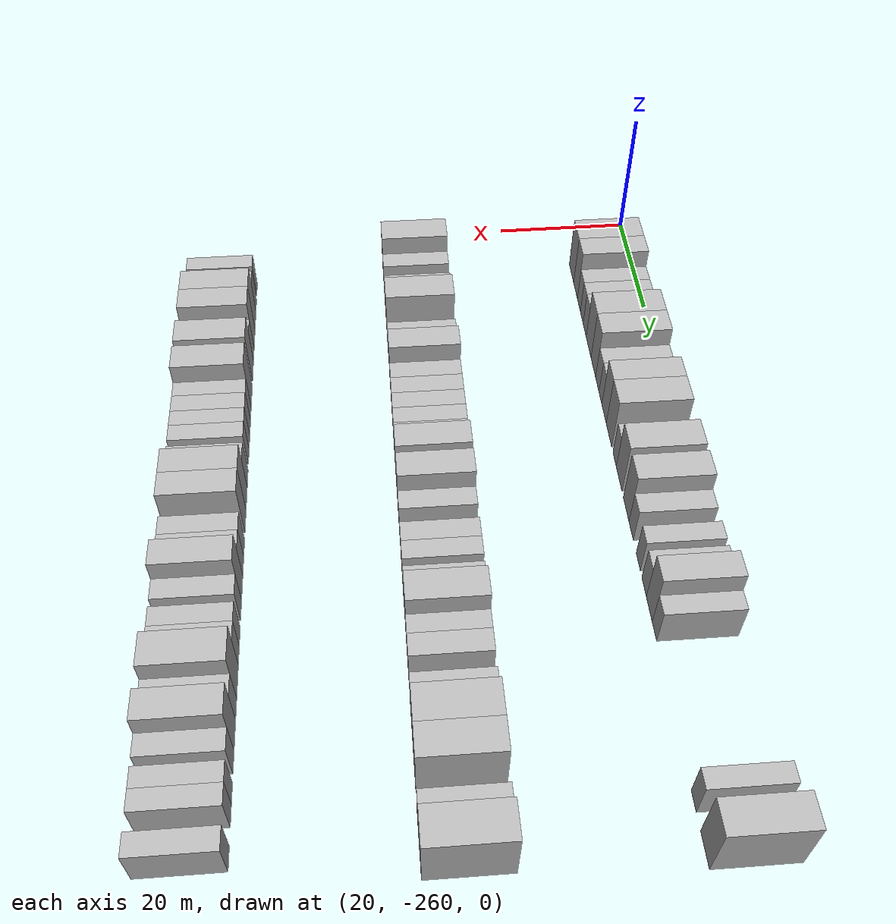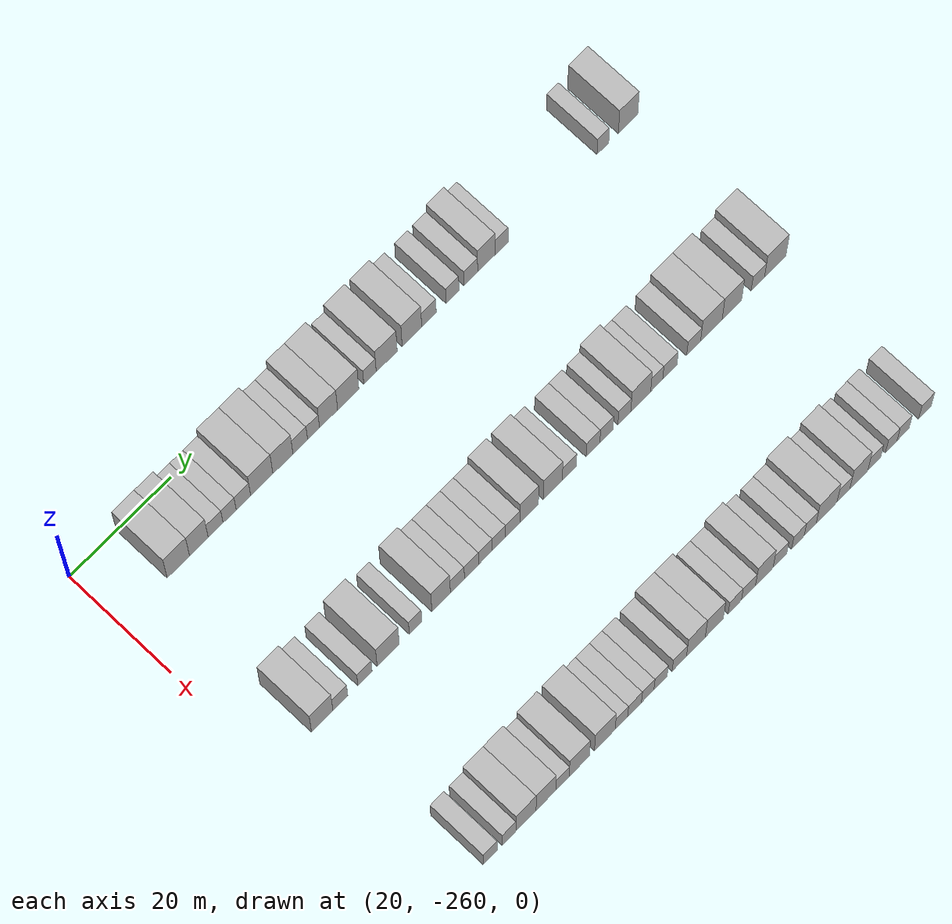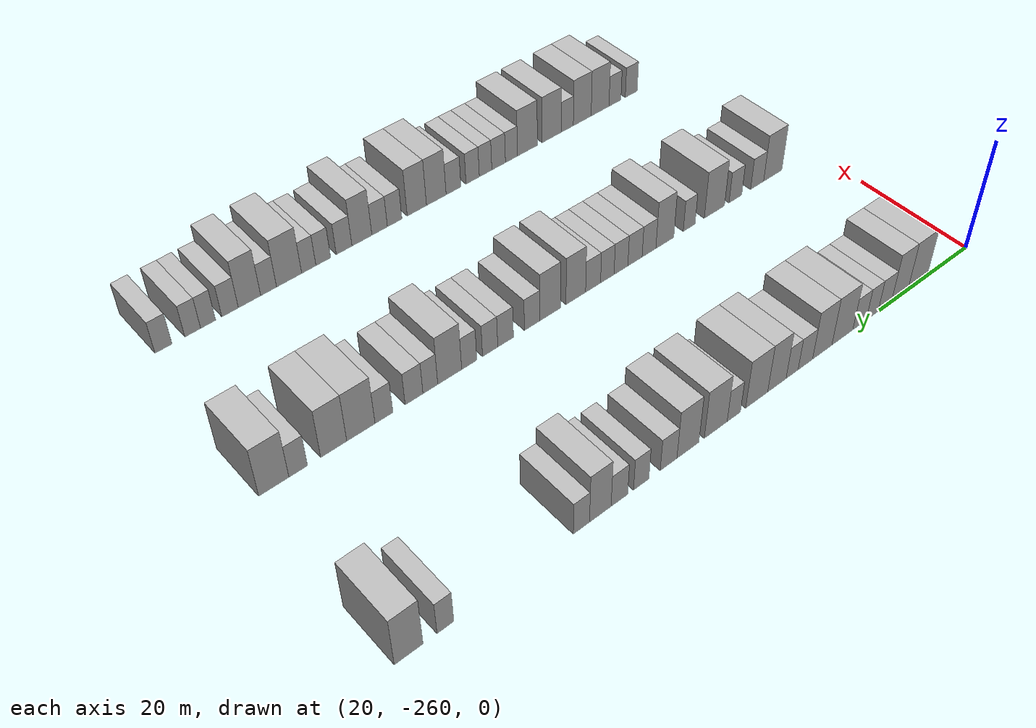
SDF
<sdf version="1.6">
 <world name="default">
  <model name="building_48">
   <static>1</static>
   <pose>25.0000 -248.5804 0 0.000000 0.000000 0.000000</pose>
   <link name="link">
    <pose>0 0 4.50 0 0 0</pose>
    <collision name="collision"><geometry><box><size>10.0000 4.4221 9.0000</size></box></geometry></collision>
    <visual name="visual">
     <cast_shadows>0</cast_shadows>
     <geometry><box><size>10.0000 4.4221 9.0000</size></box></geometry>
     <material>
      <script>
       <uri>model://HANNAS_wall/materials/scripts</uri>
       <uri>model://HANNAS_wall/materials/textures</uri>
       <name>vrc/HANNAS_wall</name>
      </script>
     </material>
    </visual>
   </link>
  </model>
  <model name="building_49">
   <static>1</static>
   <pose>25.0000 -244.5217 0 0.000000 0.000000 0.000000</pose>
   <link name="link">
    <pose>0 0 4.50 0 0 0</pose>
    <collision name="collision"><geometry><box><size>10.0000 3.6953 9.0000</size></box></geometry></collision>
    <visual name="visual">
     <cast_shadows>0</cast_shadows>
     <geometry><box><size>10.0000 3.6953 9.0000</size></box></geometry>
     <material>
      <script>
       <uri>model://HANNAS_wall/materials/scripts</uri>
       <uri>model://HANNAS_wall/materials/textures</uri>
       <name>vrc/HANNAS_wall</name>
      </script>
     </material>
    </visual>
   </link>
  </model>
  <model name="building_50">
   <static>1</static>
   <pose>25.0000 -241.1943 0 0.000000 0.000000 0.000000</pose>
   <link name="link">
    <pose>0 0 3.00 0 0 0</pose>
    <collision name="collision"><geometry><box><size>10.0000 2.9596 6.0000</size></box></geometry></collision>
    <visual name="visual">
     <cast_shadows>0</cast_shadows>
     <geometry><box><size>10.0000 2.9596 6.0000</size></box></geometry>
     <material>
      <script>
       <uri>model://HANNAS_wall/materials/scripts</uri>
       <uri>model://HANNAS_wall/materials/textures</uri>
       <name>vrc/HANNAS_wall</name>
      </script>
     </material>
    </visual>
   </link>
  </model>
  <model name="building_51">
   <static>1</static>
   <pose>25.0000 -238.4130 0 0.000000 0.000000 0.000000</pose>
   <link name="link">
    <pose>0 0 3.00 0 0 0</pose>
    <collision name="collision"><geometry><box><size>10.0000 2.6029 6.0000</size></box></geometry></collision>
    <visual name="visual">
     <cast_shadows>0</cast_shadows>
     <geometry><box><size>10.0000 2.6029 6.0000</size></box></geometry>
     <material>
      <script>
       <uri>model://HANNAS_wall/materials/scripts</uri>
       <uri>model://HANNAS_wall/materials/textures</uri>
       <name>vrc/HANNAS_wall</name>
      </script>
     </material>
    </visual>
   </link>
  </model>
  <model name="building_52">
   <static>1</static>
   <pose>25.0000 -235.6699 0 0.000000 0.000000 0.000000</pose>
   <link name="link">
    <pose>0 0 3.00 0 0 0</pose>
    <collision name="collision"><geometry><box><size>10.0000 2.8835 6.0000</size></box></geometry></collision>
    <visual name="visual">
     <cast_shadows>0</cast_shadows>
     <geometry><box><size>10.0000 2.8835 6.0000</size></box></geometry>
     <material>
      <script>
       <uri>model://HANNAS_wall/materials/scripts</uri>
       <uri>model://HANNAS_wall/materials/textures</uri>
       <name>vrc/HANNAS_wall</name>
      </script>
     </material>
    </visual>
   </link>
  </model>
  <model name="building_53">
   <static>1</static>
   <pose>25.0000 -232.0106 0 0.000000 0.000000 0.000000</pose>
   <link name="link">
    <pose>0 0 4.50 0 0 0</pose>
    <collision name="collision"><geometry><box><size>10.0000 4.4352 9.0000</size></box></geometry></collision>
    <visual name="visual">
     <cast_shadows>0</cast_shadows>
     <geometry><box><size>10.0000 4.4352 9.0000</size></box></geometry>
     <material>
      <script>
       <uri>model://HANNAS_wall/materials/scripts</uri>
       <uri>model://HANNAS_wall/materials/textures</uri>
       <name>vrc/HANNAS_wall</name>
      </script>
     </material>
    </visual>
   </link>
  </model>
  <model name="building_54">
   <static>1</static>
   <pose>25.0000 -227.7891 0 0.000000 0.000000 0.000000</pose>
   <link name="link">
    <pose>0 0 4.50 0 0 0</pose>
    <collision name="collision"><geometry><box><size>10.0000 4.0078 9.0000</size></box></geometry></collision>
    <visual name="visual">
     <cast_shadows>0</cast_shadows>
     <geometry><box><size>10.0000 4.0078 9.0000</size></box></geometry>
     <material>
      <script>
       <uri>model://HANNAS_wall/materials/scripts</uri>
       <uri>model://HANNAS_wall/materials/textures</uri>
       <name>vrc/HANNAS_wall</name>
      </script>
     </material>
    </visual>
   </link>
  </model>
  <model name="building_55">
   <static>1</static>
   <pose>25.0000 -224.3146 0 0.000000 0.000000 0.000000</pose>
   <link name="link">
    <pose>0 0 3.00 0 0 0</pose>
    <collision name="collision"><geometry><box><size>10.0000 2.9411 6.0000</size></box></geometry></collision>
    <visual name="visual">
     <cast_shadows>0</cast_shadows>
     <geometry><box><size>10.0000 2.9411 6.0000</size></box></geometry>
     <material>
      <script>
       <uri>model://HANNAS_wall/materials/scripts</uri>
       <uri>model://HANNAS_wall/materials/textures</uri>
       <name>vrc/HANNAS_wall</name>
      </script>
     </material>
    </visual>
   </link>
  </model>
  <model name="building_56">
   <static>1</static>
   <pose>25.0000 -221.6386 0 0.000000 0.000000 0.000000</pose>
   <link name="link">
    <pose>0 0 3.00 0 0 0</pose>
    <collision name="collision"><geometry><box><size>10.0000 2.4108 6.0000</size></box></geometry></collision>
    <visual name="visual">
     <cast_shadows>0</cast_shadows>
     <geometry><box><size>10.0000 2.4108 6.0000</size></box></geometry>
     <material>
      <script>
       <uri>model://HANNAS_wall/materials/scripts</uri>
       <uri>model://HANNAS_wall/materials/textures</uri>
       <name>vrc/HANNAS_wall</name>
      </script>
     </material>
    </visual>
   </link>
  </model>
  <model name="building_57">
   <static>1</static>
   <pose>25.0000 -218.6162 0 0.000000 0.000000 0.000000</pose>
   <link name="link">
    <pose>0 0 4.50 0 0 0</pose>
    <collision name="collision"><geometry><box><size>10.0000 3.6340 9.0000</size></box></geometry></collision>
    <visual name="visual">
     <cast_shadows>0</cast_shadows>
     <geometry><box><size>10.0000 3.6340 9.0000</size></box></geometry>
     <material>
      <script>
       <uri>model://HANNAS_wall/materials/scripts</uri>
       <uri>model://HANNAS_wall/materials/textures</uri>
       <name>vrc/HANNAS_wall</name>
      </script>
     </material>
    </visual>
   </link>
  </model>
  <model name="building_58">
   <static>1</static>
   <pose>25.0000 -214.6538 0 0.000000 0.000000 0.000000</pose>
   <link name="link">
    <pose>0 0 4.50 0 0 0</pose>
    <collision name="collision"><geometry><box><size>10.0000 4.2908 9.0000</size></box></geometry></collision>
    <visual name="visual">
     <cast_shadows>0</cast_shadows>
     <geometry><box><size>10.0000 4.2908 9.0000</size></box></geometry>
     <material>
      <script>
       <uri>model://HANNAS_wall/materials/scripts</uri>
       <uri>model://HANNAS_wall/materials/textures</uri>
       <name>vrc/HANNAS_wall</name>
      </script>
     </material>
    </visual>
   </link>
  </model>
  <model name="building_59">
   <static>1</static>
   <pose>25.0000 -210.2531 0 0.000000 0.000000 0.000000</pose>
   <link name="link">
    <pose>0 0 3.00 0 0 0</pose>
    <collision name="collision"><geometry><box><size>10.0000 2.5106 6.0000</size></box></geometry></collision>
    <visual name="visual">
     <cast_shadows>0</cast_shadows>
     <geometry><box><size>10.0000 2.5106 6.0000</size></box></geometry>
     <material>
      <script>
       <uri>model://HANNAS_wall/materials/scripts</uri>
       <uri>model://HANNAS_wall/materials/textures</uri>
       <name>vrc/HANNAS_wall</name>
      </script>
     </material>
    </visual>
   </link>
  </model>
  <model name="building_60">
   <static>1</static>
   <pose>25.0000 -206.8731 0 0.000000 0.000000 0.000000</pose>
   <link name="link">
    <pose>0 0 4.50 0 0 0</pose>
    <collision name="collision"><geometry><box><size>10.0000 4.2494 9.0000</size></box></geometry></collision>
    <visual name="visual">
     <cast_shadows>0</cast_shadows>
     <geometry><box><size>10.0000 4.2494 9.0000</size></box></geometry>
     <material>
      <script>
       <uri>model://HANNAS_wall/materials/scripts</uri>
       <uri>model://HANNAS_wall/materials/textures</uri>
       <name>vrc/HANNAS_wall</name>
      </script>
     </material>
    </visual>
   </link>
  </model>
  <model name="building_61">
   <static>1</static>
   <pose>25.0000 -201.7573 0 0.000000 0.000000 0.000000</pose>
   <link name="link">
    <pose>0 0 4.50 0 0 0</pose>
    <collision name="collision"><geometry><box><size>10.0000 3.9822 9.0000</size></box></geometry></collision>
    <visual name="visual">
     <cast_shadows>0</cast_shadows>
     <geometry><box><size>10.0000 3.9822 9.0000</size></box></geometry>
     <material>
      <script>
       <uri>model://HANNAS_wall/materials/scripts</uri>
       <uri>model://HANNAS_wall/materials/textures</uri>
       <name>vrc/HANNAS_wall</name>
      </script>
     </material>
    </visual>
   </link>
  </model>
  <model name="building_62">
   <static>1</static>
   <pose>25.0000 -198.2822 0 0.000000 0.000000 0.000000</pose>
   <link name="link">
    <pose>0 0 3.00 0 0 0</pose>
    <collision name="collision"><geometry><box><size>10.0000 2.9679 6.0000</size></box></geometry></collision>
    <visual name="visual">
     <cast_shadows>0</cast_shadows>
     <geometry><box><size>10.0000 2.9679 6.0000</size></box></geometry>
     <material>
      <script>
       <uri>model://HANNAS_wall/materials/scripts</uri>
       <uri>model://HANNAS_wall/materials/textures</uri>
       <name>vrc/HANNAS_wall</name>
      </script>
     </material>
    </visual>
   </link>
  </model>
  <model name="building_63">
   <static>1</static>
   <pose>25.0000 -193.4689 0 0.000000 0.000000 0.000000</pose>
   <link name="link">
    <pose>0 0 3.00 0 0 0</pose>
    <collision name="collision"><geometry><box><size>10.0000 2.6585 6.0000</size></box></geometry></collision>
    <visual name="visual">
     <cast_shadows>0</cast_shadows>
     <geometry><box><size>10.0000 2.6585 6.0000</size></box></geometry>
     <material>
      <script>
       <uri>model://HANNAS_wall/materials/scripts</uri>
       <uri>model://HANNAS_wall/materials/textures</uri>
       <name>vrc/HANNAS_wall</name>
      </script>
     </material>
    </visual>
   </link>
  </model>
  <model name="building_64">
   <static>1</static>
   <pose>25.0000 -189.7304 0 0.000000 0.000000 0.000000</pose>
   <link name="link">
    <pose>0 0 3.00 0 0 0</pose>
    <collision name="collision"><geometry><box><size>10.0000 2.8185 6.0000</size></box></geometry></collision>
    <visual name="visual">
     <cast_shadows>0</cast_shadows>
     <geometry><box><size>10.0000 2.8185 6.0000</size></box></geometry>
     <material>
      <script>
       <uri>model://HANNAS_wall/materials/scripts</uri>
       <uri>model://HANNAS_wall/materials/textures</uri>
       <name>vrc/HANNAS_wall</name>
      </script>
     </material>
    </visual>
   </link>
  </model>
  <model name="building_65">
   <static>1</static>
   <pose>25.0000 -186.5203 0 0.000000 0.000000 0.000000</pose>
   <link name="link">
    <pose>0 0 4.50 0 0 0</pose>
    <collision name="collision"><geometry><box><size>10.0000 3.6018 9.0000</size></box></geometry></collision>
    <visual name="visual">
     <cast_shadows>0</cast_shadows>
     <geometry><box><size>10.0000 3.6018 9.0000</size></box></geometry>
     <material>
      <script>
       <uri>model://HANNAS_wall/materials/scripts</uri>
       <uri>model://HANNAS_wall/materials/textures</uri>
       <name>vrc/HANNAS_wall</name>
      </script>
     </material>
    </visual>
   </link>
  </model>
  <model name="building_66">
   <static>1</static>
   <pose>25.0000 -183.3925 0 0.000000 0.000000 0.000000</pose>
   <link name="link">
    <pose>0 0 3.00 0 0 0</pose>
    <collision name="collision"><geometry><box><size>10.0000 2.6539 6.0000</size></box></geometry></collision>
    <visual name="visual">
     <cast_shadows>0</cast_shadows>
     <geometry><box><size>10.0000 2.6539 6.0000</size></box></geometry>
     <material>
      <script>
       <uri>model://HANNAS_wall/materials/scripts</uri>
       <uri>model://HANNAS_wall/materials/textures</uri>
       <name>vrc/HANNAS_wall</name>
      </script>
     </material>
    </visual>
   </link>
  </model>
  <model name="building_67">
   <static>1</static>
   <pose>25.0000 -162.3993 0 0.000000 0.000000 0.000000</pose>
   <link name="link">
    <pose>0 0 3.00 0 0 0</pose>
    <collision name="collision"><geometry><box><size>10.0000 2.4442 6.0000</size></box></geometry></collision>
    <visual name="visual">
     <cast_shadows>0</cast_shadows>
     <geometry><box><size>10.0000 2.4442 6.0000</size></box></geometry>
     <material>
      <script>
       <uri>model://HANNAS_wall/materials/scripts</uri>
       <uri>model://HANNAS_wall/materials/textures</uri>
       <name>vrc/HANNAS_wall</name>
      </script>
     </material>
    </visual>
   </link>
  </model>
  <model name="building_68">
   <static>1</static>
   <pose>25.0000 -157.1487 0 0.000000 0.000000 0.000000</pose>
   <link name="link">
    <pose>0 0 4.50 0 0 0</pose>
    <collision name="collision"><geometry><box><size>10.0000 4.0571 9.0000</size></box></geometry></collision>
    <visual name="visual">
     <cast_shadows>0</cast_shadows>
     <geometry><box><size>10.0000 4.0571 9.0000</size></box></geometry>
     <material>
      <script>
       <uri>model://HANNAS_wall/materials/scripts</uri>
       <uri>model://HANNAS_wall/materials/textures</uri>
       <name>vrc/HANNAS_wall</name>
      </script>
     </material>
    </visual>
   </link>
  </model>
  <model name="building_274">
   <static>1</static>
   <pose>55.0000 -250.5684 0 0.000000 0.000000 0.000000</pose>
   <link name="link">
    <pose>0 0 4.50 0 0 0</pose>
    <collision name="collision"><geometry><box><size>10.0000 4.2100 9.0000</size></box></geometry></collision>
    <visual name="visual">
     <cast_shadows>0</cast_shadows>
     <geometry><box><size>10.0000 4.2100 9.0000</size></box></geometry>
     <material>
      <script>
       <uri>model://HANNAS_wall/materials/scripts</uri>
       <uri>model://HANNAS_wall/materials/textures</uri>
       <name>vrc/HANNAS_wall</name>
      </script>
     </material>
    </visual>
   </link>
  </model>
  <model name="building_275">
   <static>1</static>
   <pose>55.0000 -246.9900 0 0.000000 0.000000 0.000000</pose>
   <link name="link">
    <pose>0 0 3.00 0 0 0</pose>
    <collision name="collision"><geometry><box><size>10.0000 2.9468 6.0000</size></box></geometry></collision>
    <visual name="visual">
     <cast_shadows>0</cast_shadows>
     <geometry><box><size>10.0000 2.9468 6.0000</size></box></geometry>
     <material>
      <script>
       <uri>model://HANNAS_wall/materials/scripts</uri>
       <uri>model://HANNAS_wall/materials/textures</uri>
       <name>vrc/HANNAS_wall</name>
      </script>
     </material>
    </visual>
   </link>
  </model>
  <model name="building_276">
   <static>1</static>
   <pose>55.0000 -242.1060 0 0.000000 0.000000 0.000000</pose>
   <link name="link">
    <pose>0 0 3.00 0 0 0</pose>
    <collision name="collision"><geometry><box><size>10.0000 2.8211 6.0000</size></box></geometry></collision>
    <visual name="visual">
     <cast_shadows>0</cast_shadows>
     <geometry><box><size>10.0000 2.8211 6.0000</size></box></geometry>
     <material>
      <script>
       <uri>model://HANNAS_wall/materials/scripts</uri>
       <uri>model://HANNAS_wall/materials/textures</uri>
       <name>vrc/HANNAS_wall</name>
      </script>
     </material>
    </visual>
   </link>
  </model>
  <model name="building_277">
   <static>1</static>
   <pose>55.0000 -237.4971 0 0.000000 0.000000 0.000000</pose>
   <link name="link">
    <pose>0 0 4.50 0 0 0</pose>
    <collision name="collision"><geometry><box><size>10.0000 4.3968 9.0000</size></box></geometry></collision>
    <visual name="visual">
     <cast_shadows>0</cast_shadows>
     <geometry><box><size>10.0000 4.3968 9.0000</size></box></geometry>
     <material>
      <script>
       <uri>model://HANNAS_wall/materials/scripts</uri>
       <uri>model://HANNAS_wall/materials/textures</uri>
       <name>vrc/HANNAS_wall</name>
      </script>
     </material>
    </visual>
   </link>
  </model>
  <model name="building_278">
   <static>1</static>
   <pose>55.0000 -232.0472 0 0.000000 0.000000 0.000000</pose>
   <link name="link">
    <pose>0 0 3.00 0 0 0</pose>
    <collision name="collision"><geometry><box><size>10.0000 2.5031 6.0000</size></box></geometry></collision>
    <visual name="visual">
     <cast_shadows>0</cast_shadows>
     <geometry><box><size>10.0000 2.5031 6.0000</size></box></geometry>
     <material>
      <script>
       <uri>model://HANNAS_wall/materials/scripts</uri>
       <uri>model://HANNAS_wall/materials/textures</uri>
       <name>vrc/HANNAS_wall</name>
      </script>
     </material>
    </visual>
   </link>
  </model>
  <model name="building_279">
   <static>1</static>
   <pose>55.0000 -226.9400 0 0.000000 0.000000 0.000000</pose>
   <link name="link">
    <pose>0 0 4.50 0 0 0</pose>
    <collision name="collision"><geometry><box><size>10.0000 3.7114 9.0000</size></box></geometry></collision>
    <visual name="visual">
     <cast_shadows>0</cast_shadows>
     <geometry><box><size>10.0000 3.7114 9.0000</size></box></geometry>
     <material>
      <script>
       <uri>model://HANNAS_wall/materials/scripts</uri>
       <uri>model://HANNAS_wall/materials/textures</uri>
       <name>vrc/HANNAS_wall</name>
      </script>
     </material>
    </visual>
   </link>
  </model>
  <model name="building_280">
   <static>1</static>
   <pose>55.0000 -223.6730 0 0.000000 0.000000 0.000000</pose>
   <link name="link">
    <pose>0 0 3.00 0 0 0</pose>
    <collision name="collision"><geometry><box><size>10.0000 2.8226 6.0000</size></box></geometry></collision>
    <visual name="visual">
     <cast_shadows>0</cast_shadows>
     <geometry><box><size>10.0000 2.8226 6.0000</size></box></geometry>
     <material>
      <script>
       <uri>model://HANNAS_wall/materials/scripts</uri>
       <uri>model://HANNAS_wall/materials/textures</uri>
       <name>vrc/HANNAS_wall</name>
      </script>
     </material>
    </visual>
   </link>
  </model>
  <model name="building_281">
   <static>1</static>
   <pose>55.0000 -220.8213 0 0.000000 0.000000 0.000000</pose>
   <link name="link">
    <pose>0 0 3.00 0 0 0</pose>
    <collision name="collision"><geometry><box><size>10.0000 2.8808 6.0000</size></box></geometry></collision>
    <visual name="visual">
     <cast_shadows>0</cast_shadows>
     <geometry><box><size>10.0000 2.8808 6.0000</size></box></geometry>
     <material>
      <script>
       <uri>model://HANNAS_wall/materials/scripts</uri>
       <uri>model://HANNAS_wall/materials/textures</uri>
       <name>vrc/HANNAS_wall</name>
      </script>
     </material>
    </visual>
   </link>
  </model>
  <model name="building_282">
   <static>1</static>
   <pose>55.0000 -218.0063 0 0.000000 0.000000 0.000000</pose>
   <link name="link">
    <pose>0 0 3.00 0 0 0</pose>
    <collision name="collision"><geometry><box><size>10.0000 2.7491 6.0000</size></box></geometry></collision>
    <visual name="visual">
     <cast_shadows>0</cast_shadows>
     <geometry><box><size>10.0000 2.7491 6.0000</size></box></geometry>
     <material>
      <script>
       <uri>model://HANNAS_wall/materials/scripts</uri>
       <uri>model://HANNAS_wall/materials/textures</uri>
       <name>vrc/HANNAS_wall</name>
      </script>
     </material>
    </visual>
   </link>
  </model>
  <model name="building_283">
   <static>1</static>
   <pose>55.0000 -215.3022 0 0.000000 0.000000 0.000000</pose>
   <link name="link">
    <pose>0 0 3.00 0 0 0</pose>
    <collision name="collision"><geometry><box><size>10.0000 2.6592 6.0000</size></box></geometry></collision>
    <visual name="visual">
     <cast_shadows>0</cast_shadows>
     <geometry><box><size>10.0000 2.6592 6.0000</size></box></geometry>
     <material>
      <script>
       <uri>model://HANNAS_wall/materials/scripts</uri>
       <uri>model://HANNAS_wall/materials/textures</uri>
       <name>vrc/HANNAS_wall</name>
      </script>
     </material>
    </visual>
   </link>
  </model>
  <model name="building_284">
   <static>1</static>
   <pose>55.0000 -212.5203 0 0.000000 0.000000 0.000000</pose>
   <link name="link">
    <pose>0 0 3.00 0 0 0</pose>
    <collision name="collision"><geometry><box><size>10.0000 2.9047 6.0000</size></box></geometry></collision>
    <visual name="visual">
     <cast_shadows>0</cast_shadows>
     <geometry><box><size>10.0000 2.9047 6.0000</size></box></geometry>
     <material>
      <script>
       <uri>model://HANNAS_wall/materials/scripts</uri>
       <uri>model://HANNAS_wall/materials/textures</uri>
       <name>vrc/HANNAS_wall</name>
      </script>
     </material>
    </visual>
   </link>
  </model>
  <model name="building_285">
   <static>1</static>
   <pose>55.0000 -209.1941 0 0.000000 0.000000 0.000000</pose>
   <link name="link">
    <pose>0 0 4.50 0 0 0</pose>
    <collision name="collision"><geometry><box><size>10.0000 3.7478 9.0000</size></box></geometry></collision>
    <visual name="visual">
     <cast_shadows>0</cast_shadows>
     <geometry><box><size>10.0000 3.7478 9.0000</size></box></geometry>
     <material>
      <script>
       <uri>model://HANNAS_wall/materials/scripts</uri>
       <uri>model://HANNAS_wall/materials/textures</uri>
       <name>vrc/HANNAS_wall</name>
      </script>
     </material>
    </visual>
   </link>
  </model>
  <model name="building_286">
   <static>1</static>
   <pose>55.0000 -204.3924 0 0.000000 0.000000 0.000000</pose>
   <link name="link">
    <pose>0 0 4.50 0 0 0</pose>
    <collision name="collision"><geometry><box><size>10.0000 3.8556 9.0000</size></box></geometry></collision>
    <visual name="visual">
     <cast_shadows>0</cast_shadows>
     <geometry><box><size>10.0000 3.8556 9.0000</size></box></geometry>
     <material>
      <script>
       <uri>model://HANNAS_wall/materials/scripts</uri>
       <uri>model://HANNAS_wall/materials/textures</uri>
       <name>vrc/HANNAS_wall</name>
      </script>
     </material>
    </visual>
   </link>
  </model>
  <model name="building_287">
   <static>1</static>
   <pose>55.0000 -201.0353 0 0.000000 0.000000 0.000000</pose>
   <link name="link">
    <pose>0 0 3.00 0 0 0</pose>
    <collision name="collision"><geometry><box><size>10.0000 2.8584 6.0000</size></box></geometry></collision>
    <visual name="visual">
     <cast_shadows>0</cast_shadows>
     <geometry><box><size>10.0000 2.8584 6.0000</size></box></geometry>
     <material>
      <script>
       <uri>model://HANNAS_wall/materials/scripts</uri>
       <uri>model://HANNAS_wall/materials/textures</uri>
       <name>vrc/HANNAS_wall</name>
      </script>
     </material>
    </visual>
   </link>
  </model>
  <model name="building_288">
   <static>1</static>
   <pose>55.0000 -196.2004 0 0.000000 0.000000 0.000000</pose>
   <link name="link">
    <pose>0 0 3.00 0 0 0</pose>
    <collision name="collision"><geometry><box><size>10.0000 2.8115 6.0000</size></box></geometry></collision>
    <visual name="visual">
     <cast_shadows>0</cast_shadows>
     <geometry><box><size>10.0000 2.8115 6.0000</size></box></geometry>
     <material>
      <script>
       <uri>model://HANNAS_wall/materials/scripts</uri>
       <uri>model://HANNAS_wall/materials/textures</uri>
       <name>vrc/HANNAS_wall</name>
      </script>
     </material>
    </visual>
   </link>
  </model>
  <model name="building_289">
   <static>1</static>
   <pose>55.0000 -193.4467 0 0.000000 0.000000 0.000000</pose>
   <link name="link">
    <pose>0 0 3.00 0 0 0</pose>
    <collision name="collision"><geometry><box><size>10.0000 2.6958 6.0000</size></box></geometry></collision>
    <visual name="visual">
     <cast_shadows>0</cast_shadows>
     <geometry><box><size>10.0000 2.6958 6.0000</size></box></geometry>
     <material>
      <script>
       <uri>model://HANNAS_wall/materials/scripts</uri>
       <uri>model://HANNAS_wall/materials/textures</uri>
       <name>vrc/HANNAS_wall</name>
      </script>
     </material>
    </visual>
   </link>
  </model>
  <model name="building_290">
   <static>1</static>
   <pose>55.0000 -189.7815 0 0.000000 0.000000 0.000000</pose>
   <link name="link">
    <pose>0 0 3.00 0 0 0</pose>
    <collision name="collision"><geometry><box><size>10.0000 2.6346 6.0000</size></box></geometry></collision>
    <visual name="visual">
     <cast_shadows>0</cast_shadows>
     <geometry><box><size>10.0000 2.6346 6.0000</size></box></geometry>
     <material>
      <script>
       <uri>model://HANNAS_wall/materials/scripts</uri>
       <uri>model://HANNAS_wall/materials/textures</uri>
       <name>vrc/HANNAS_wall</name>
      </script>
     </material>
    </visual>
   </link>
  </model>
  <model name="building_291">
   <static>1</static>
   <pose>55.0000 -186.4198 0 0.000000 0.000000 0.000000</pose>
   <link name="link">
    <pose>0 0 4.50 0 0 0</pose>
    <collision name="collision"><geometry><box><size>10.0000 4.0889 9.0000</size></box></geometry></collision>
    <visual name="visual">
     <cast_shadows>0</cast_shadows>
     <geometry><box><size>10.0000 4.0889 9.0000</size></box></geometry>
     <material>
      <script>
       <uri>model://HANNAS_wall/materials/scripts</uri>
       <uri>model://HANNAS_wall/materials/textures</uri>
       <name>vrc/HANNAS_wall</name>
      </script>
     </material>
    </visual>
   </link>
  </model>
  <model name="building_292">
   <static>1</static>
   <pose>55.0000 -183.1329 0 0.000000 0.000000 0.000000</pose>
   <link name="link">
    <pose>0 0 3.00 0 0 0</pose>
    <collision name="collision"><geometry><box><size>10.0000 2.4849 6.0000</size></box></geometry></collision>
    <visual name="visual">
     <cast_shadows>0</cast_shadows>
     <geometry><box><size>10.0000 2.4849 6.0000</size></box></geometry>
     <material>
      <script>
       <uri>model://HANNAS_wall/materials/scripts</uri>
       <uri>model://HANNAS_wall/materials/textures</uri>
       <name>vrc/HANNAS_wall</name>
      </script>
     </material>
    </visual>
   </link>
  </model>
  <model name="building_293">
   <static>1</static>
   <pose>55.0000 -180.4133 0 0.000000 0.000000 0.000000</pose>
   <link name="link">
    <pose>0 0 3.00 0 0 0</pose>
    <collision name="collision"><geometry><box><size>10.0000 2.9543 6.0000</size></box></geometry></collision>
    <visual name="visual">
     <cast_shadows>0</cast_shadows>
     <geometry><box><size>10.0000 2.9543 6.0000</size></box></geometry>
     <material>
      <script>
       <uri>model://HANNAS_wall/materials/scripts</uri>
       <uri>model://HANNAS_wall/materials/textures</uri>
       <name>vrc/HANNAS_wall</name>
      </script>
     </material>
    </visual>
   </link>
  </model>
  <model name="building_294">
   <static>1</static>
   <pose>55.0000 -175.4966 0 0.000000 0.000000 0.000000</pose>
   <link name="link">
    <pose>0 0 3.00 0 0 0</pose>
    <collision name="collision"><geometry><box><size>10.0000 2.8792 6.0000</size></box></geometry></collision>
    <visual name="visual">
     <cast_shadows>0</cast_shadows>
     <geometry><box><size>10.0000 2.8792 6.0000</size></box></geometry>
     <material>
      <script>
       <uri>model://HANNAS_wall/materials/scripts</uri>
       <uri>model://HANNAS_wall/materials/textures</uri>
       <name>vrc/HANNAS_wall</name>
      </script>
     </material>
    </visual>
   </link>
  </model>
  <model name="building_295">
   <static>1</static>
   <pose>55.0000 -171.8115 0 0.000000 0.000000 0.000000</pose>
   <link name="link">
    <pose>0 0 4.50 0 0 0</pose>
    <collision name="collision"><geometry><box><size>10.0000 4.4910 9.0000</size></box></geometry></collision>
    <visual name="visual">
     <cast_shadows>0</cast_shadows>
     <geometry><box><size>10.0000 4.4910 9.0000</size></box></geometry>
     <material>
      <script>
       <uri>model://HANNAS_wall/materials/scripts</uri>
       <uri>model://HANNAS_wall/materials/textures</uri>
       <name>vrc/HANNAS_wall</name>
      </script>
     </material>
    </visual>
   </link>
  </model>
  <model name="building_296">
   <static>1</static>
   <pose>55.0000 -167.5444 0 0.000000 0.000000 0.000000</pose>
   <link name="link">
    <pose>0 0 4.50 0 0 0</pose>
    <collision name="collision"><geometry><box><size>10.0000 4.0432 9.0000</size></box></geometry></collision>
    <visual name="visual">
     <cast_shadows>0</cast_shadows>
     <geometry><box><size>10.0000 4.0432 9.0000</size></box></geometry>
     <material>
      <script>
       <uri>model://HANNAS_wall/materials/scripts</uri>
       <uri>model://HANNAS_wall/materials/textures</uri>
       <name>vrc/HANNAS_wall</name>
      </script>
     </material>
    </visual>
   </link>
  </model>
  <model name="building_297">
   <static>1</static>
   <pose>55.0000 -162.1227 0 0.000000 0.000000 0.000000</pose>
   <link name="link">
    <pose>0 0 3.00 0 0 0</pose>
    <collision name="collision"><geometry><box><size>10.0000 2.8002 6.0000</size></box></geometry></collision>
    <visual name="visual">
     <cast_shadows>0</cast_shadows>
     <geometry><box><size>10.0000 2.8002 6.0000</size></box></geometry>
     <material>
      <script>
       <uri>model://HANNAS_wall/materials/scripts</uri>
       <uri>model://HANNAS_wall/materials/textures</uri>
       <name>vrc/HANNAS_wall</name>
      </script>
     </material>
    </visual>
   </link>
  </model>
  <model name="building_298">
   <static>1</static>
   <pose>55.0000 -158.4807 0 0.000000 0.000000 0.000000</pose>
   <link name="link">
    <pose>0 0 4.50 0 0 0</pose>
    <collision name="collision"><geometry><box><size>10.0000 4.4838 9.0000</size></box></geometry></collision>
    <visual name="visual">
     <cast_shadows>0</cast_shadows>
     <geometry><box><size>10.0000 4.4838 9.0000</size></box></geometry>
     <material>
      <script>
       <uri>model://HANNAS_wall/materials/scripts</uri>
       <uri>model://HANNAS_wall/materials/textures</uri>
       <name>vrc/HANNAS_wall</name>
      </script>
     </material>
    </visual>
   </link>
  </model>
  <model name="building_509">
   <static>1</static>
   <pose>85.0000 -248.3720 0 0.000000 0.000000 0.000000</pose>
   <link name="link">
    <pose>0 0 3.00 0 0 0</pose>
    <collision name="collision"><geometry><box><size>10.0000 2.7358 6.0000</size></box></geometry></collision>
    <visual name="visual">
     <cast_shadows>0</cast_shadows>
     <geometry><box><size>10.0000 2.7358 6.0000</size></box></geometry>
     <material>
      <script>
       <uri>model://HANNAS_wall/materials/scripts</uri>
       <uri>model://HANNAS_wall/materials/textures</uri>
       <name>vrc/HANNAS_wall</name>
      </script>
     </material>
    </visual>
   </link>
  </model>
  <model name="building_510">
   <static>1</static>
   <pose>85.0000 -244.6510 0 0.000000 0.000000 0.000000</pose>
   <link name="link">
    <pose>0 0 3.00 0 0 0</pose>
    <collision name="collision"><geometry><box><size>10.0000 2.7063 6.0000</size></box></geometry></collision>
    <visual name="visual">
     <cast_shadows>0</cast_shadows>
     <geometry><box><size>10.0000 2.7063 6.0000</size></box></geometry>
     <material>
      <script>
       <uri>model://HANNAS_wall/materials/scripts</uri>
       <uri>model://HANNAS_wall/materials/textures</uri>
       <name>vrc/HANNAS_wall</name>
      </script>
     </material>
    </visual>
   </link>
  </model>
  <model name="building_511">
   <static>1</static>
   <pose>85.0000 -241.2996 0 0.000000 0.000000 0.000000</pose>
   <link name="link">
    <pose>0 0 4.50 0 0 0</pose>
    <collision name="collision"><geometry><box><size>10.0000 3.9964 9.0000</size></box></geometry></collision>
    <visual name="visual">
     <cast_shadows>0</cast_shadows>
     <geometry><box><size>10.0000 3.9964 9.0000</size></box></geometry>
     <material>
      <script>
       <uri>model://HANNAS_wall/materials/scripts</uri>
       <uri>model://HANNAS_wall/materials/textures</uri>
       <name>vrc/HANNAS_wall</name>
      </script>
     </material>
    </visual>
   </link>
  </model>
  <model name="building_512">
   <static>1</static>
   <pose>85.0000 -237.3345 0 0.000000 0.000000 0.000000</pose>
   <link name="link">
    <pose>0 0 4.50 0 0 0</pose>
    <collision name="collision"><geometry><box><size>10.0000 3.9338 9.0000</size></box></geometry></collision>
    <visual name="visual">
     <cast_shadows>0</cast_shadows>
     <geometry><box><size>10.0000 3.9338 9.0000</size></box></geometry>
     <material>
      <script>
       <uri>model://HANNAS_wall/materials/scripts</uri>
       <uri>model://HANNAS_wall/materials/textures</uri>
       <name>vrc/HANNAS_wall</name>
      </script>
     </material>
    </visual>
   </link>
  </model>
  <model name="building_513">
   <static>1</static>
   <pose>85.0000 -234.0371 0 0.000000 0.000000 0.000000</pose>
   <link name="link">
    <pose>0 0 3.00 0 0 0</pose>
    <collision name="collision"><geometry><box><size>10.0000 2.6611 6.0000</size></box></geometry></collision>
    <visual name="visual">
     <cast_shadows>0</cast_shadows>
     <geometry><box><size>10.0000 2.6611 6.0000</size></box></geometry>
     <material>
      <script>
       <uri>model://HANNAS_wall/materials/scripts</uri>
       <uri>model://HANNAS_wall/materials/textures</uri>
       <name>vrc/HANNAS_wall</name>
      </script>
     </material>
    </visual>
   </link>
  </model>
  <model name="building_514">
   <static>1</static>
   <pose>85.0000 -230.6772 0 0.000000 0.000000 0.000000</pose>
   <link name="link">
    <pose>0 0 4.50 0 0 0</pose>
    <collision name="collision"><geometry><box><size>10.0000 4.0587 9.0000</size></box></geometry></collision>
    <visual name="visual">
     <cast_shadows>0</cast_shadows>
     <geometry><box><size>10.0000 4.0587 9.0000</size></box></geometry>
     <material>
      <script>
       <uri>model://HANNAS_wall/materials/scripts</uri>
       <uri>model://HANNAS_wall/materials/textures</uri>
       <name>vrc/HANNAS_wall</name>
      </script>
     </material>
    </visual>
   </link>
  </model>
  <model name="building_515">
   <static>1</static>
   <pose>85.0000 -225.5664 0 0.000000 0.000000 0.000000</pose>
   <link name="link">
    <pose>0 0 4.50 0 0 0</pose>
    <collision name="collision"><geometry><box><size>10.0000 4.1629 9.0000</size></box></geometry></collision>
    <visual name="visual">
     <cast_shadows>0</cast_shadows>
     <geometry><box><size>10.0000 4.1629 9.0000</size></box></geometry>
     <material>
      <script>
       <uri>model://HANNAS_wall/materials/scripts</uri>
       <uri>model://HANNAS_wall/materials/textures</uri>
       <name>vrc/HANNAS_wall</name>
      </script>
     </material>
    </visual>
   </link>
  </model>
  <model name="building_516">
   <static>1</static>
   <pose>85.0000 -222.2311 0 0.000000 0.000000 0.000000</pose>
   <link name="link">
    <pose>0 0 3.00 0 0 0</pose>
    <collision name="collision"><geometry><box><size>10.0000 2.5077 6.0000</size></box></geometry></collision>
    <visual name="visual">
     <cast_shadows>0</cast_shadows>
     <geometry><box><size>10.0000 2.5077 6.0000</size></box></geometry>
     <material>
      <script>
       <uri>model://HANNAS_wall/materials/scripts</uri>
       <uri>model://HANNAS_wall/materials/textures</uri>
       <name>vrc/HANNAS_wall</name>
      </script>
     </material>
    </visual>
   </link>
  </model>
  <model name="building_517">
   <static>1</static>
   <pose>85.0000 -219.5841 0 0.000000 0.000000 0.000000</pose>
   <link name="link">
    <pose>0 0 3.00 0 0 0</pose>
    <collision name="collision"><geometry><box><size>10.0000 2.7865 6.0000</size></box></geometry></collision>
    <visual name="visual">
     <cast_shadows>0</cast_shadows>
     <geometry><box><size>10.0000 2.7865 6.0000</size></box></geometry>
     <material>
      <script>
       <uri>model://HANNAS_wall/materials/scripts</uri>
       <uri>model://HANNAS_wall/materials/textures</uri>
       <name>vrc/HANNAS_wall</name>
      </script>
     </material>
    </visual>
   </link>
  </model>
  <model name="building_518">
   <static>1</static>
   <pose>85.0000 -216.9294 0 0.000000 0.000000 0.000000</pose>
   <link name="link">
    <pose>0 0 3.00 0 0 0</pose>
    <collision name="collision"><geometry><box><size>10.0000 2.5227 6.0000</size></box></geometry></collision>
    <visual name="visual">
     <cast_shadows>0</cast_shadows>
     <geometry><box><size>10.0000 2.5227 6.0000</size></box></geometry>
     <material>
      <script>
       <uri>model://HANNAS_wall/materials/scripts</uri>
       <uri>model://HANNAS_wall/materials/textures</uri>
       <name>vrc/HANNAS_wall</name>
      </script>
     </material>
    </visual>
   </link>
  </model>
  <model name="building_519">
   <static>1</static>
   <pose>85.0000 -214.3346 0 0.000000 0.000000 0.000000</pose>
   <link name="link">
    <pose>0 0 3.00 0 0 0</pose>
    <collision name="collision"><geometry><box><size>10.0000 2.6670 6.0000</size></box></geometry></collision>
    <visual name="visual">
     <cast_shadows>0</cast_shadows>
     <geometry><box><size>10.0000 2.6670 6.0000</size></box></geometry>
     <material>
      <script>
       <uri>model://HANNAS_wall/materials/scripts</uri>
       <uri>model://HANNAS_wall/materials/textures</uri>
       <name>vrc/HANNAS_wall</name>
      </script>
     </material>
    </visual>
   </link>
  </model>
  <model name="building_520">
   <static>1</static>
   <pose>85.0000 -210.5445 0 0.000000 0.000000 0.000000</pose>
   <link name="link">
    <pose>0 0 3.00 0 0 0</pose>
    <collision name="collision"><geometry><box><size>10.0000 2.9132 6.0000</size></box></geometry></collision>
    <visual name="visual">
     <cast_shadows>0</cast_shadows>
     <geometry><box><size>10.0000 2.9132 6.0000</size></box></geometry>
     <material>
      <script>
       <uri>model://HANNAS_wall/materials/scripts</uri>
       <uri>model://HANNAS_wall/materials/textures</uri>
       <name>vrc/HANNAS_wall</name>
      </script>
     </material>
    </visual>
   </link>
  </model>
  <model name="building_521">
   <static>1</static>
   <pose>85.0000 -207.1857 0 0.000000 0.000000 0.000000</pose>
   <link name="link">
    <pose>0 0 4.50 0 0 0</pose>
    <collision name="collision"><geometry><box><size>10.0000 3.8043 9.0000</size></box></geometry></collision>
    <visual name="visual">
     <cast_shadows>0</cast_shadows>
     <geometry><box><size>10.0000 3.8043 9.0000</size></box></geometry>
     <material>
      <script>
       <uri>model://HANNAS_wall/materials/scripts</uri>
       <uri>model://HANNAS_wall/materials/textures</uri>
       <name>vrc/HANNAS_wall</name>
      </script>
     </material>
    </visual>
   </link>
  </model>
  <model name="building_522">
   <static>1</static>
   <pose>85.0000 -203.4502 0 0.000000 0.000000 0.000000</pose>
   <link name="link">
    <pose>0 0 4.50 0 0 0</pose>
    <collision name="collision"><geometry><box><size>10.0000 3.6667 9.0000</size></box></geometry></collision>
    <visual name="visual">
     <cast_shadows>0</cast_shadows>
     <geometry><box><size>10.0000 3.6667 9.0000</size></box></geometry>
     <material>
      <script>
       <uri>model://HANNAS_wall/materials/scripts</uri>
       <uri>model://HANNAS_wall/materials/textures</uri>
       <name>vrc/HANNAS_wall</name>
      </script>
     </material>
    </visual>
   </link>
  </model>
  <model name="building_523">
   <static>1</static>
   <pose>85.0000 -199.2601 0 0.000000 0.000000 0.000000</pose>
   <link name="link">
    <pose>0 0 3.00 0 0 0</pose>
    <collision name="collision"><geometry><box><size>10.0000 2.7134 6.0000</size></box></geometry></collision>
    <visual name="visual">
     <cast_shadows>0</cast_shadows>
     <geometry><box><size>10.0000 2.7134 6.0000</size></box></geometry>
     <material>
      <script>
       <uri>model://HANNAS_wall/materials/scripts</uri>
       <uri>model://HANNAS_wall/materials/textures</uri>
       <name>vrc/HANNAS_wall</name>
      </script>
     </material>
    </visual>
   </link>
  </model>
  <model name="building_524">
   <static>1</static>
   <pose>85.0000 -196.4707 0 0.000000 0.000000 0.000000</pose>
   <link name="link">
    <pose>0 0 3.00 0 0 0</pose>
    <collision name="collision"><geometry><box><size>10.0000 2.8654 6.0000</size></box></geometry></collision>
    <visual name="visual">
     <cast_shadows>0</cast_shadows>
     <geometry><box><size>10.0000 2.8654 6.0000</size></box></geometry>
     <material>
      <script>
       <uri>model://HANNAS_wall/materials/scripts</uri>
       <uri>model://HANNAS_wall/materials/textures</uri>
       <name>vrc/HANNAS_wall</name>
      </script>
     </material>
    </visual>
   </link>
  </model>
  <model name="building_525">
   <static>1</static>
   <pose>85.0000 -193.2310 0 0.000000 0.000000 0.000000</pose>
   <link name="link">
    <pose>0 0 4.50 0 0 0</pose>
    <collision name="collision"><geometry><box><size>10.0000 3.6141 9.0000</size></box></geometry></collision>
    <visual name="visual">
     <cast_shadows>0</cast_shadows>
     <geometry><box><size>10.0000 3.6141 9.0000</size></box></geometry>
     <material>
      <script>
       <uri>model://HANNAS_wall/materials/scripts</uri>
       <uri>model://HANNAS_wall/materials/textures</uri>
       <name>vrc/HANNAS_wall</name>
      </script>
     </material>
    </visual>
   </link>
  </model>
  <model name="building_526">
   <static>1</static>
   <pose>85.0000 -190.0133 0 0.000000 0.000000 0.000000</pose>
   <link name="link">
    <pose>0 0 3.00 0 0 0</pose>
    <collision name="collision"><geometry><box><size>10.0000 2.8212 6.0000</size></box></geometry></collision>
    <visual name="visual">
     <cast_shadows>0</cast_shadows>
     <geometry><box><size>10.0000 2.8212 6.0000</size></box></geometry>
     <material>
      <script>
       <uri>model://HANNAS_wall/materials/scripts</uri>
       <uri>model://HANNAS_wall/materials/textures</uri>
       <name>vrc/HANNAS_wall</name>
      </script>
     </material>
    </visual>
   </link>
  </model>
  <model name="building_527">
   <static>1</static>
   <pose>85.0000 -186.3067 0 0.000000 0.000000 0.000000</pose>
   <link name="link">
    <pose>0 0 3.00 0 0 0</pose>
    <collision name="collision"><geometry><box><size>10.0000 2.5921 6.0000</size></box></geometry></collision>
    <visual name="visual">
     <cast_shadows>0</cast_shadows>
     <geometry><box><size>10.0000 2.5921 6.0000</size></box></geometry>
     <material>
      <script>
       <uri>model://HANNAS_wall/materials/scripts</uri>
       <uri>model://HANNAS_wall/materials/textures</uri>
       <name>vrc/HANNAS_wall</name>
      </script>
     </material>
    </visual>
   </link>
  </model>
  <model name="building_528">
   <static>1</static>
   <pose>85.0000 -183.7704 0 0.000000 0.000000 0.000000</pose>
   <link name="link">
    <pose>0 0 3.00 0 0 0</pose>
    <collision name="collision"><geometry><box><size>10.0000 2.4805 6.0000</size></box></geometry></collision>
    <visual name="visual">
     <cast_shadows>0</cast_shadows>
     <geometry><box><size>10.0000 2.4805 6.0000</size></box></geometry>
     <material>
      <script>
       <uri>model://HANNAS_wall/materials/scripts</uri>
       <uri>model://HANNAS_wall/materials/textures</uri>
       <name>vrc/HANNAS_wall</name>
      </script>
     </material>
    </visual>
   </link>
  </model>
  <model name="building_529">
   <static>1</static>
   <pose>85.0000 -180.3818 0 0.000000 0.000000 0.000000</pose>
   <link name="link">
    <pose>0 0 4.50 0 0 0</pose>
    <collision name="collision"><geometry><box><size>10.0000 4.2967 9.0000</size></box></geometry></collision>
    <visual name="visual">
     <cast_shadows>0</cast_shadows>
     <geometry><box><size>10.0000 4.2967 9.0000</size></box></geometry>
     <material>
      <script>
       <uri>model://HANNAS_wall/materials/scripts</uri>
       <uri>model://HANNAS_wall/materials/textures</uri>
       <name>vrc/HANNAS_wall</name>
      </script>
     </material>
    </visual>
   </link>
  </model>
  <model name="building_530">
   <static>1</static>
   <pose>85.0000 -176.8970 0 0.000000 0.000000 0.000000</pose>
   <link name="link">
    <pose>0 0 3.00 0 0 0</pose>
    <collision name="collision"><geometry><box><size>10.0000 2.6730 6.0000</size></box></geometry></collision>
    <visual name="visual">
     <cast_shadows>0</cast_shadows>
     <geometry><box><size>10.0000 2.6730 6.0000</size></box></geometry>
     <material>
      <script>
       <uri>model://HANNAS_wall/materials/scripts</uri>
       <uri>model://HANNAS_wall/materials/textures</uri>
       <name>vrc/HANNAS_wall</name>
      </script>
     </material>
    </visual>
   </link>
  </model>
  <model name="building_531">
   <static>1</static>
   <pose>85.0000 -173.7024 0 0.000000 0.000000 0.000000</pose>
   <link name="link">
    <pose>0 0 4.50 0 0 0</pose>
    <collision name="collision"><geometry><box><size>10.0000 3.7162 9.0000</size></box></geometry></collision>
    <visual name="visual">
     <cast_shadows>0</cast_shadows>
     <geometry><box><size>10.0000 3.7162 9.0000</size></box></geometry>
     <material>
      <script>
       <uri>model://HANNAS_wall/materials/scripts</uri>
       <uri>model://HANNAS_wall/materials/textures</uri>
       <name>vrc/HANNAS_wall</name>
      </script>
     </material>
    </visual>
   </link>
  </model>
  <model name="building_532">
   <static>1</static>
   <pose>85.0000 -170.4956 0 0.000000 0.000000 0.000000</pose>
   <link name="link">
    <pose>0 0 3.00 0 0 0</pose>
    <collision name="collision"><geometry><box><size>10.0000 2.6974 6.0000</size></box></geometry></collision>
    <visual name="visual">
     <cast_shadows>0</cast_shadows>
     <geometry><box><size>10.0000 2.6974 6.0000</size></box></geometry>
     <material>
      <script>
       <uri>model://HANNAS_wall/materials/scripts</uri>
       <uri>model://HANNAS_wall/materials/textures</uri>
       <name>vrc/HANNAS_wall</name>
      </script>
     </material>
    </visual>
   </link>
  </model>
  <model name="building_533">
   <static>1</static>
   <pose>85.0000 -166.9385 0 0.000000 0.000000 0.000000</pose>
   <link name="link">
    <pose>0 0 3.00 0 0 0</pose>
    <collision name="collision"><geometry><box><size>10.0000 2.4167 6.0000</size></box></geometry></collision>
    <visual name="visual">
     <cast_shadows>0</cast_shadows>
     <geometry><box><size>10.0000 2.4167 6.0000</size></box></geometry>
     <material>
      <script>
       <uri>model://HANNAS_wall/materials/scripts</uri>
       <uri>model://HANNAS_wall/materials/textures</uri>
       <name>vrc/HANNAS_wall</name>
      </script>
     </material>
    </visual>
   </link>
  </model>
  <model name="building_534">
   <static>1</static>
   <pose>85.0000 -164.4749 0 0.000000 0.000000 0.000000</pose>
   <link name="link">
    <pose>0 0 3.00 0 0 0</pose>
    <collision name="collision"><geometry><box><size>10.0000 2.5104 6.0000</size></box></geometry></collision>
    <visual name="visual">
     <cast_shadows>0</cast_shadows>
     <geometry><box><size>10.0000 2.5104 6.0000</size></box></geometry>
     <material>
      <script>
       <uri>model://HANNAS_wall/materials/scripts</uri>
       <uri>model://HANNAS_wall/materials/textures</uri>
       <name>vrc/HANNAS_wall</name>
      </script>
     </material>
    </visual>
   </link>
  </model>
  <model name="building_535">
   <static>1</static>
   <pose>85.0000 -159.8909 0 0.000000 0.000000 0.000000</pose>
   <link name="link">
    <pose>0 0 3.00 0 0 0</pose>
    <collision name="collision"><geometry><box><size>10.0000 2.6576 6.0000</size></box></geometry></collision>
    <visual name="visual">
     <cast_shadows>0</cast_shadows>
     <geometry><box><size>10.0000 2.6576 6.0000</size></box></geometry>
     <material>
      <script>
       <uri>model://HANNAS_wall/materials/scripts</uri>
       <uri>model://HANNAS_wall/materials/textures</uri>
       <name>vrc/HANNAS_wall</name>
      </script>
     </material>
    </visual>
   </link>
  </model>
 </world>
</sdf>
